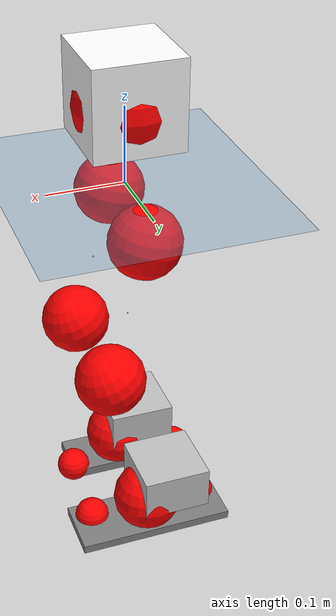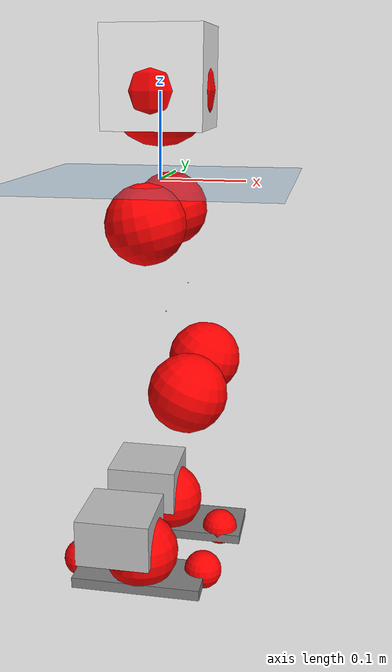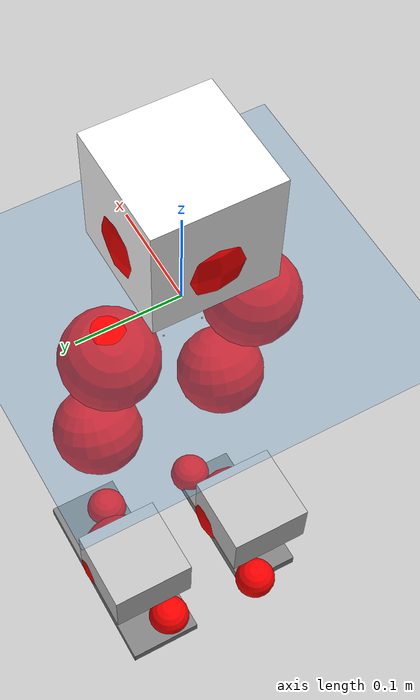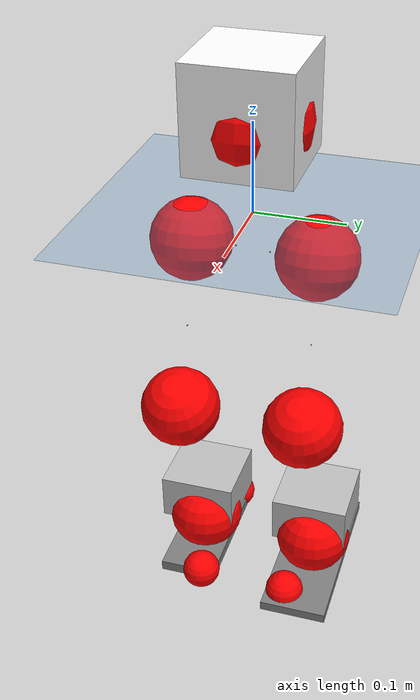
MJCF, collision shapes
<mujoco model="pi_12dof_release_v1">
  <compiler angle="radian" assetdir="assets" balanceinertia="true" inertiafromgeom="false"/>

  <option timestep="0.005" density="1.2" viscosity="2e-05"/>

  <size nkey="1"/>

  <visual>
    <quality shadowsize="8192"/>
    <map shadowclip="0.5"/>
  </visual>

  <default>
    <default class="/">
      <joint armature="0.01" damping="0.01" frictionloss="0.01"/>
      <geom contype="0" conaffinity="0" group="1" solref="-1000 -80"/>
      <site size="0.01 0.005 0.005" group="5"/>
      <general forcelimited="true" biastype="affine" gainprm="20" biasprm="0 -20 -0.5"/>
      <default class="foot">
        <geom size="0.0845 0.036 0.005" type="box" condim="6" group="4" priority="1" friction="0.9 0.2 0.2" solimp="0.015 1 0.005"/>
      </default>
      <default class="reward_collision_sphere">
        <geom group="5" rgba="1 0 0 1"/>
      </default>
    </default>
  </default>

  <asset>
    <texture type="skybox" colorspace="auto" name="//unnamed_texture_0" builtin="gradient" rgb1="0.95 0.95 0.95" rgb2="0.95 0.95 0.95" width="100" height="600"/>
    <texture type="2d" colorspace="auto" name="texplane" builtin="checker" rgb1="0.345 0.575 0.748" rgb2="0.345 0.575 0.748" markrgb="1 1 1" width="512" height="512"/>
    <material name="MatPlane" class="/" texture="texplane" texuniform="true" texrepeat="2 2" specular="0.9"/>
    <mesh name="baselink_1" class="/" file="baselink_1.STL"/>
    <mesh name="r_hip_pitch_link" class="/" file="r_hip_pitch_link.STL"/>
    <mesh name="r_hip_roll_link" class="/" file="r_hip_roll_link.STL"/>
    <mesh name="r_thigh_link" class="/" file="r_thigh_link.STL"/>
    <mesh name="r_calf_link" class="/" file="r_calf_link.STL"/>
    <mesh name="r_ankle_pitch_link" class="/" file="r_ankle_pitch_link.STL"/>
    <mesh name="r_ankle_roll_link" class="/" file="r_ankle_roll_link.STL"/>
    <mesh name="l_hip_pitch_link" class="/" file="l_hip_pitch_link.STL"/>
    <mesh name="l_hip_roll_link" class="/" file="l_hip_roll_link.STL"/>
    <mesh name="l_thigh_link" class="/" file="l_thigh_link.STL"/>
    <mesh name="l_calf_link" class="/" file="l_calf_link.STL"/>
    <mesh name="l_ankle_pitch_link" class="/" file="l_ankle_pitch_link.STL"/>
    <mesh name="l_ankle_roll_link" class="/" file="l_ankle_roll_link.STL"/>
  </asset>

  <worldbody>
    <geom name="floor" class="/" size="100 100 0.125" type="plane" group="0" material="MatPlane"/>
    <light name="toplight_shadow" class="/" pos="0 0 5" dir="0.0990148 0.0990148 -0.990148" type="directional" ambient="0.04 0.04 0.04" diffuse="0.55 0.55 0.55" specular="0.12 0.12 0.12"/>
    <light name="toplight_fill" class="/" pos="0 0 5" dir="0.0990148 0.0990148 -0.990148" type="directional" castshadow="false" ambient="0.04 0.04 0.04" diffuse="0.3 0.3 0.3" specular="0.08 0.08 0.08"/>
    <body name="trunk" pos="0.000318018 -0.000134445 0.00124348" quat="1 0.00013989 -7.73644e-06 0.000199975">
      <inertial pos="0.00425677 -0.00453044 0.0552052" quat="0.695556 0.0101791 0.00952568 0.718337" mass="3.32059" diaginertia="0.0180958 0.00462492 0.0239082"/>
      <joint name="//unnamed_joint_0" type="free"/>
      <geom name="//unnamed_geom_1" class="/" type="mesh" density="0" rgba="1 1 1 1" mesh="baselink_1"/>
      <geom name="//unnamed_geom_2" class="/" size="0.0573632 0.0573632 0.0573632" pos="0 0 0.113971" type="box" rgba="1 1 1 1"/>
      <geom name="//unnamed_geom_3" class="reward_collision_sphere" size="0.0630995" pos="0 0 0.0997247"/>
      <site name="imu" class="/" pos="0.00971752 -0.00182866 0.00878579" size="0.0114726"/>
      <camera name="track" class="/" pos="0 -1.74737 0" quat="0.707107 0.707107 0 0" mode="trackcom"/>
      <camera name="ego_camera" class="/" pos="0.0857603 0 0.256435" quat="-0.5 -0.5 0.5 0.5"/>
      <body name="r_hip_pitch_link" pos="-0.00244473 -0.019667 -0.0443944" quat="0.992155 0.00119598 -0.125011 2.35249e-05">
        <inertial pos="0.00412468 -0.0511578 -0.00106857" quat="-0.0141472 0.709174 -0.0374253 0.703897" mass="0.527166" diaginertia="0.000206961 4.8203e-05 0.000474884"/>
        <joint name="r_hip_pitch_joint" class="/" pos="0 0 0" axis="0.018574 -0.999693 -0.0164272" range="-1.79334 1.26676" armature="0.0113286" damping="0.0116092" frictionloss="0.0124643"/>
        <geom name="//unnamed_geom_4" class="/" type="mesh" density="0" rgba="0.75294 0.75294 0.75294 1" mesh="r_hip_pitch_link"/>
        <geom name="//unnamed_geom_5" class="/" size="0.000573632 0.000573632 0.000573632" type="box" rgba="0.75294 0.75294 0.75294 1"/>
        <body name="r_hip_roll_link" pos="-0.000267879 -0.0502907 0.00108077" quat="1 -5.97745e-08 -5.91672e-05 -0.000175021">
          <inertial pos="-0.00135198 -0.00101262 -0.0869126" quat="0.704828 -0.0802821 -0.0862074 0.699528" mass="0.631126" diaginertia="0.00064509 0.000144066 0.000839645"/>
          <joint name="r_hip_roll_joint" class="/" pos="0 0 0" axis="-0.999949 -0.00422187 0.00920715" range="-0.119552 0.462713" armature="0.0100951" damping="0.0475648" frictionloss="0.011584"/>
          <geom name="//unnamed_geom_6" class="/" type="mesh" density="0" rgba="0.75294 0.75294 0.75294 1" mesh="r_hip_roll_link"/>
          <geom name="//unnamed_geom_7" class="/" size="0.000573632 0.000573632 0.000573632" type="box" rgba="0.75294 0.75294 0.75294 1"/>
          <geom name="//unnamed_geom_8" class="reward_collision_sphere" size="0.0458906"/>
          <body name="r_thigh_link" pos="-0.00161751 -0.000928992 -0.1007" quat="0.999998 -0.000230547 -0.00158116 -0.00123842">
            <inertial pos="0.000239041 0.000882273 -0.0675129" quat="0.736688 0.676231 -0.00111324 0.000533216" mass="0.169694" diaginertia="0.000243453 4.98136e-05 0.000352869"/>
            <joint name="r_thigh_joint" class="/" pos="0 0 0" axis="-0.00305002 -0.00233833 -0.999993" range="-0.310426 0.621154" armature="0.00998414" damping="0.00756766" frictionloss="0.0113512"/>
            <geom name="//unnamed_geom_9" class="/" type="mesh" density="0" rgba="0.75294 0.75294 0.75294 1" mesh="r_thigh_link"/>
            <geom name="//unnamed_geom_10" class="/" size="0.000573632 0.000573632 0.000573632" type="box" rgba="0.75294 0.75294 0.75294 1"/>
            <body name="r_calf_link" pos="0.00131718 -0.00253304 -0.098375" quat="0.947949 0.000635252 0.318421 0.00053292">
              <inertial pos="-0.000940258 0.00175304 -0.101937" quat="0.999993 -0.002768 0.00173448 0.00156223" mass="1.32007" diaginertia="0.00707247 0.00184388 0.00102066"/>
              <joint name="r_calf_joint" class="/" pos="0 0 0" axis="-0.0272412 -0.999626 -0.00231462" range="-1.67686 0.636454" armature="0.011455" damping="0.0151386" frictionloss="0.010175"/>
              <geom name="//unnamed_geom_11" class="/" type="mesh" density="0" rgba="0.75294 0.75294 0.75294 1" mesh="r_calf_link"/>
              <geom name="//unnamed_geom_12" class="/" size="0.000573632 0.000573632 0.000573632" type="box" rgba="0.75294 0.75294 0.75294 1"/>
              <geom name="//unnamed_geom_13" class="reward_collision_sphere" size="0.0458906"/>
              <body name="r_ankle_pitch_link" pos="-0.00553717 0.000221205 -0.199449" quat="0.980089 -0.000570886 -0.198554 -0.000842066">
                <inertial pos="0.00503623 0.000868021 -0.000345665" quat="-0.00124224 0.705845 -0.00224607 0.708362" mass="0.244176" diaginertia="0.000587468 0.000103102 0.000672789"/>
                <joint name="r_ankle_pitch_joint" class="/" pos="0 0 0" axis="0.00208448 -0.999989 -0.0043068" range="-1.28645 0.525908" armature="0.0110273" damping="0" frictionloss="0.00979913"/>
                <geom name="//unnamed_geom_14" class="/" type="mesh" density="0" rgba="0.75294 0.75294 0.75294 1" mesh="r_ankle_pitch_link"/>
                <geom name="//unnamed_geom_15" class="/" size="0.0447433 0.0458906 0.0286816" type="box" rgba="0.75294 0.75294 0.75294 1"/>
                <body name="r_ankle_roll_link" pos="0.0814296 0.00523598 5.36708e-05" quat="0.999999 0.000919449 0.000415816 0.000514886">
                  <inertial pos="-0.028729 -0.00230888 -0.0258246" quat="0.553019 0.439022 0.432029 0.561053" mass="0.835963" diaginertia="0.00219014 0.000517812 0.00164073"/>
                  <joint name="r_ankle_roll_joint" class="/" pos="0 0 0" axis="-0.999998 -0.00207283 0.00036179" stiffness="0.00724681" range="-0.108176 0.104196" armature="0.0115017" damping="0.00783542" frictionloss="0.00825257"/>
                  <geom name="//unnamed_geom_16" class="/" type="mesh" density="0" rgba="0.75294 0.75294 0.75294 1" mesh="r_ankle_roll_link"/>
                  <geom name="//unnamed_geom_17" class="/" type="mesh" rgba="0.75294 0.75294 0.75294 1" mesh="r_ankle_roll_link"/>
                  <geom name="right_foot" class="foot" size="0.0785541 0.0342886 0.00648067" pos="-0.058317 0 -0.0626841"/>
                  <geom name="//unnamed_geom_19" class="reward_collision_sphere" size="0.0458906" pos="-0.0571735 0 -0.0284928"/>
                  <geom name="//unnamed_geom_20" class="reward_collision_sphere" size="0.0229453" pos="0.0171521 0.0174737 -0.0569855"/>
                  <geom name="//unnamed_geom_21" class="reward_collision_sphere" size="0.0229453" pos="-0.137216 0.0174737 -0.0569855"/>
                  <site name="right_foot" class="foot" pos="-0.058317 0 -0.0626841" size="0.0114726"/>
                </body>
              </body>
            </body>
          </body>
        </body>
      </body>
      <body name="l_hip_pitch_link" pos="-0.00177255 0.0184281 -0.0459285" quat="0.992239 0.00109878 -0.124344 -8.54335e-05">
        <inertial pos="9.12025e-05 0.0503615 0.00229348" quat="-0.0163524 0.697003 0.00990802 0.716814" mass="0.632307" diaginertia="0.000256435 5.29428e-05 0.000580351"/>
        <joint name="l_hip_pitch_joint" class="/" pos="0 0 0" axis="-0.000416288 0.999957 -0.00921202" range="-1.29207 1.83073" armature="0.0113787" damping="0.0115734" frictionloss="0.0130405"/>
        <geom name="//unnamed_geom_22" class="/" type="mesh" density="0" rgba="0.75294 0.75294 0.75294 1" mesh="l_hip_pitch_link"/>
        <geom name="//unnamed_geom_23" class="/" size="0.000573632 0.000573632 0.000573632" type="box" rgba="0.75294 0.75294 0.75294 1"/>
        <body name="l_hip_roll_link" pos="0.00110981 0.0526472 0.000648774" quat="1 0.000197408 -0.000399254 -2.01062e-05">
          <inertial pos="-0.00415255 0.00110377 -0.0853903" quat="0.704552 -0.0714931 -0.0791144 0.701595" mass="0.572012" diaginertia="0.000598009 0.000133236 0.000721642"/>
          <joint name="l_hip_roll_joint" class="/" pos="0 0 0" axis="-0.999983 0.000902406 -0.00584417" range="-0.618083 0.204274" armature="0.0126658" damping="0.00602914" frictionloss="0.0125316"/>
          <geom name="//unnamed_geom_24" class="/" type="mesh" density="0" rgba="0.75294 0.75294 0.75294 1" mesh="l_hip_roll_link"/>
          <geom name="//unnamed_geom_25" class="/" size="0.000573632 0.000573632 0.000573632" type="box" rgba="0.75294 0.75294 0.75294 1"/>
          <geom name="//unnamed_geom_26" class="reward_collision_sphere" size="0.0458906"/>
          <body name="l_thigh_link" pos="-0.0015674 0.000895607 -0.0978275" quat="0.999999 0.000363933 -0.000798254 -0.000939248">
            <inertial pos="-0.00207227 -0.00342858 -0.0665645" quat="0.675398 0.737453 0.00103363 -0.000254983" mass="0.163167" diaginertia="0.00021848 4.21001e-05 0.000287177"/>
            <joint name="l_thigh_joint" class="/" pos="0 0 0" axis="-0.00233948 -0.0110945 -0.999936" range="-0.554788 0.357067" armature="0.0107612" damping="0" frictionloss="0.0122016"/>
            <geom name="//unnamed_geom_27" class="/" type="mesh" density="0" rgba="0.75294 0.75294 0.75294 1" mesh="l_thigh_link"/>
            <geom name="//unnamed_geom_28" class="/" size="0.000573632 0.000573632 0.000573632" type="box" rgba="0.75294 0.75294 0.75294 1"/>
            <body name="l_calf_link" pos="-0.00270236 -0.00161567 -0.100299" quat="0.947775 0.00108181 0.318936 0.00102838">
              <inertial pos="0.00276308 0.00389155 -0.100454" quat="0.999403 0.0134701 -0.00943351 0.0304" mass="1.20253" diaginertia="0.00691109 0.00177695 0.00103437"/>
              <joint name="l_calf_joint" class="/" pos="0 0 0" axis="0.00755809 0.99995 0.00650025" stiffness="0.00228221" range="-0.601747 1.63365" armature="0.0115042" damping="0.0198692" frictionloss="0.0117463"/>
              <geom name="//unnamed_geom_29" class="/" type="mesh" density="0" rgba="0.75294 0.75294 0.75294 1" mesh="l_calf_link"/>
              <geom name="//unnamed_geom_30" class="/" size="0.000573632 0.000573632 0.000573632" type="box" rgba="0.75294 0.75294 0.75294 1"/>
              <geom name="//unnamed_geom_31" class="reward_collision_sphere" size="0.0458906"/>
              <body name="l_ankle_pitch_link" pos="-0.00148741 0.0023273 -0.194086" quat="0.980293 0.000206042 -0.197548 -0.000105155">
                <inertial pos="0.00577661 -0.00686976 0.000294908" quat="-0.00501879 0.714215 0.00051489 0.699908" mass="0.288521" diaginertia="0.000637694 0.000121259 0.000739492"/>
                <joint name="l_ankle_pitch_joint" class="/" pos="0 0 0" axis="-0.0211289 0.999765 -0.00487827" range="-0.498348 1.29465" armature="0.0114795" damping="0.0243642" frictionloss="0.0100801"/>
                <geom name="//unnamed_geom_32" class="/" type="mesh" density="0" rgba="0.75294 0.75294 0.75294 1" mesh="l_ankle_pitch_link"/>
                <geom name="//unnamed_geom_33" class="/" size="0.0447433 0.0458906 0.0286816" type="box" rgba="0.75294 0.75294 0.75294 1"/>
                <body name="l_ankle_roll_link" pos="0.0851522 0.00294166 0.000827582" quat="1 -0.00035692 -0.000423399 -0.000567277">
                  <inertial pos="-0.0262366 -0.00117828 -0.0198853" quat="0.553686 0.452764 0.429943 0.550986" mass="0.813165" diaginertia="0.00225787 0.000505905 0.00151987"/>
                  <joint name="l_ankle_roll_joint" class="/" pos="0 0 0" axis="-0.999539 0.025431 0.0166061" range="-0.135252 0.280127" armature="0.011134" damping="0.0217703" frictionloss="0.0148621"/>
                  <geom name="//unnamed_geom_34" class="/" type="mesh" density="0" rgba="0.75294 0.75294 0.75294 1" mesh="l_ankle_roll_link"/>
                  <geom name="//unnamed_geom_35" class="/" type="mesh" rgba="0.75294 0.75294 0.75294 1" mesh="l_ankle_roll_link"/>
                  <geom name="left_foot" class="foot" size="0.104016 0.0396132 0.00577621" pos="-0.058317 0 -0.0626841"/>
                  <geom name="//unnamed_geom_37" class="reward_collision_sphere" size="0.0458906" pos="-0.0571735 0 -0.0284928"/>
                  <geom name="//unnamed_geom_38" class="reward_collision_sphere" size="0.0229453" pos="0.0171521 -0.0174737 -0.0569855"/>
                  <geom name="//unnamed_geom_39" class="reward_collision_sphere" size="0.0229453" pos="-0.137216 -0.0174737 -0.0569855"/>
                  <site name="left_foot" class="foot" pos="-0.058317 0 -0.0626841" size="0.0114726"/>
                </body>
              </body>
            </body>
          </body>
        </body>
      </body>
    </body>
  </worldbody>

  <contact>
    <pair class="/" geom1="floor" geom2="right_foot" name="//unnamed_contact_1"/>
    <pair class="/" geom1="floor" geom2="left_foot" name="//unnamed_contact_0"/>
  </contact>

  <actuator>
    <general name="r_hip_pitch_joint" class="/" joint="r_hip_pitch_joint" forcerange="-25.2815 25.2815" gainprm="22.1052" biasprm="0 -22.1052 -0.61179"/>
    <general name="r_hip_roll_joint" class="/" joint="r_hip_roll_joint" forcerange="-23.826 23.826" gainprm="22.1052" biasprm="0 -22.1052 -0.61179"/>
    <general name="r_thigh_joint" class="/" joint="r_thigh_joint" forcerange="-24.3411 24.3411" gainprm="22.1052" biasprm="0 -22.1052 -0.61179"/>
    <general name="r_calf_joint" class="/" joint="r_calf_joint" forcerange="-25.8796 25.8796" gainprm="22.1052" biasprm="0 -22.1052 -0.61179"/>
    <general name="r_ankle_pitch_joint" class="/" joint="r_ankle_pitch_joint" forcerange="-23.6424 23.6424" gainprm="22.1052" biasprm="0 -22.1052 -0.61179"/>
    <general name="r_ankle_roll_joint" class="/" joint="r_ankle_roll_joint" forcerange="-20.6046 20.6046" gainprm="22.1052" biasprm="0 -22.1052 -0.61179"/>
    <general name="l_hip_pitch_joint" class="/" joint="l_hip_pitch_joint" forcerange="-23.8215 23.8215" gainprm="22.1052" biasprm="0 -22.1052 -0.61179"/>
    <general name="l_hip_roll_joint" class="/" joint="l_hip_roll_joint" forcerange="-29.3298 29.3298" gainprm="22.1052" biasprm="0 -22.1052 -0.61179"/>
    <general name="l_thigh_joint" class="/" joint="l_thigh_joint" forcerange="-26.2306 26.2306" gainprm="22.1052" biasprm="0 -22.1052 -0.61179"/>
    <general name="l_calf_joint" class="/" joint="l_calf_joint" forcerange="-22.1096 22.1096" gainprm="22.1052" biasprm="0 -22.1052 -0.61179"/>
    <general name="l_ankle_pitch_joint" class="/" joint="l_ankle_pitch_joint" forcerange="-25.8249 25.8249" gainprm="22.1052" biasprm="0 -22.1052 -0.61179"/>
    <general name="l_ankle_roll_joint" class="/" joint="l_ankle_roll_joint" forcerange="-23.1423 23.1423" gainprm="22.1052" biasprm="0 -22.1052 -0.61179"/>
  </actuator>

  <sensor>
    <gyro site="imu" name="imu_angular_velocity"/>
    <velocimeter site="imu" name="imu_linear_velocity"/>
    <framelinvel objtype="site" objname="left_foot" name="left_foot_global_linear_velocity"/>
    <framelinvel objtype="site" objname="right_foot" name="right_foot_global_linear_velocity"/>
  </sensor>

  <keyframe>
    <key name="home" qpos="0 0 0.291 1 0 0 0 0.4 0 0 -0.8 0.4 0 -0.4 0 0 0.8 -0.4 0"/>
  </keyframe>
</mujoco>
